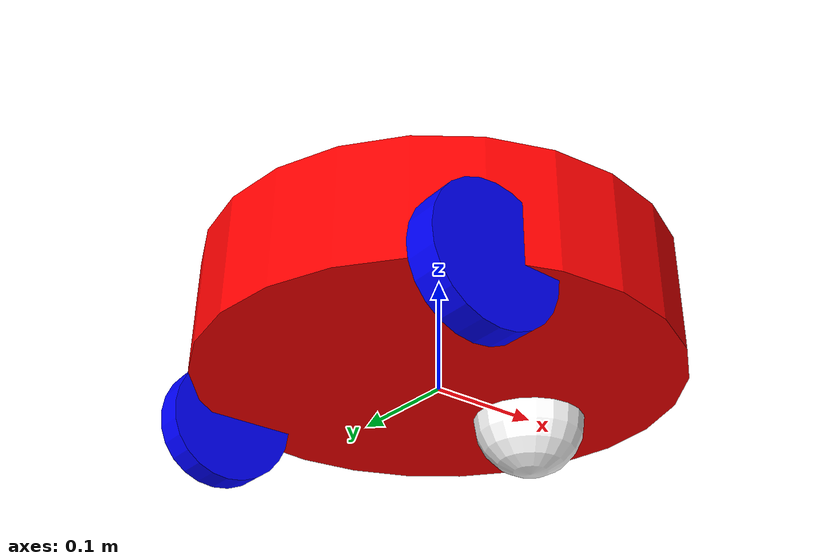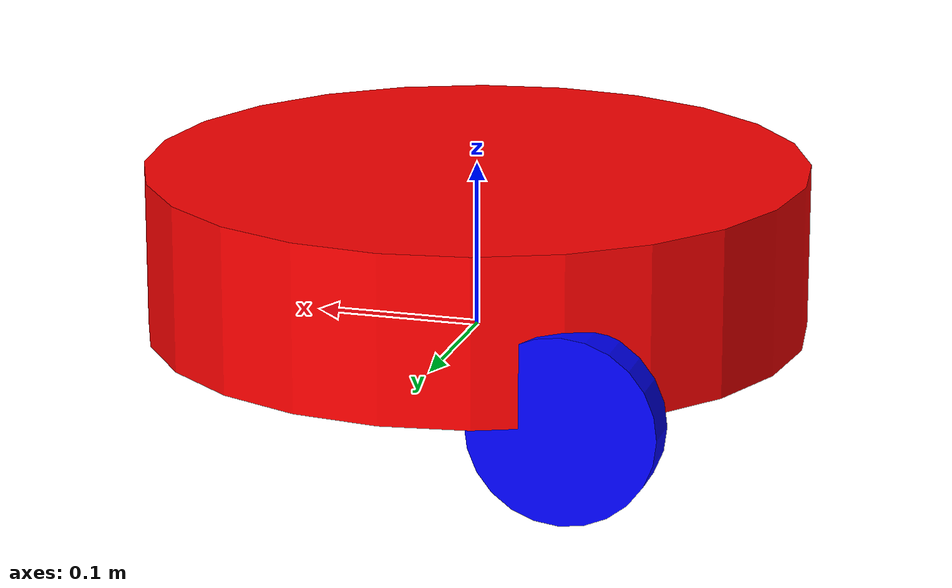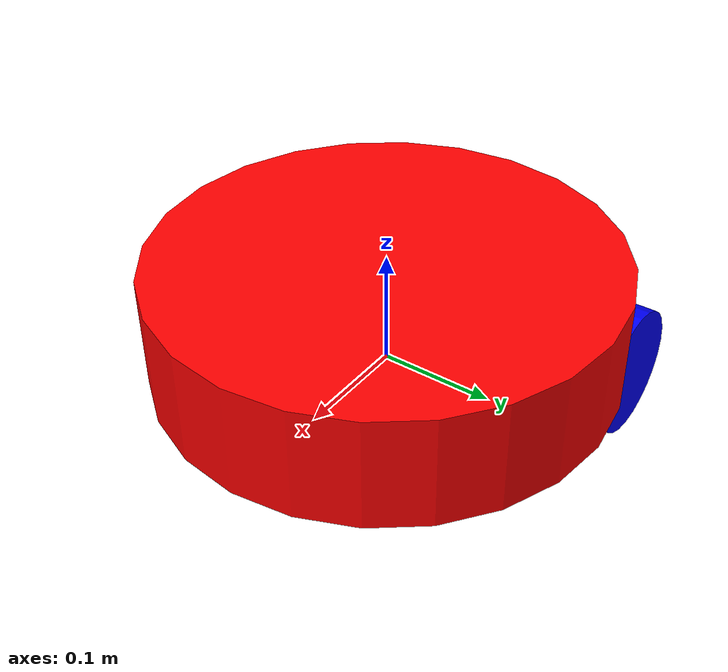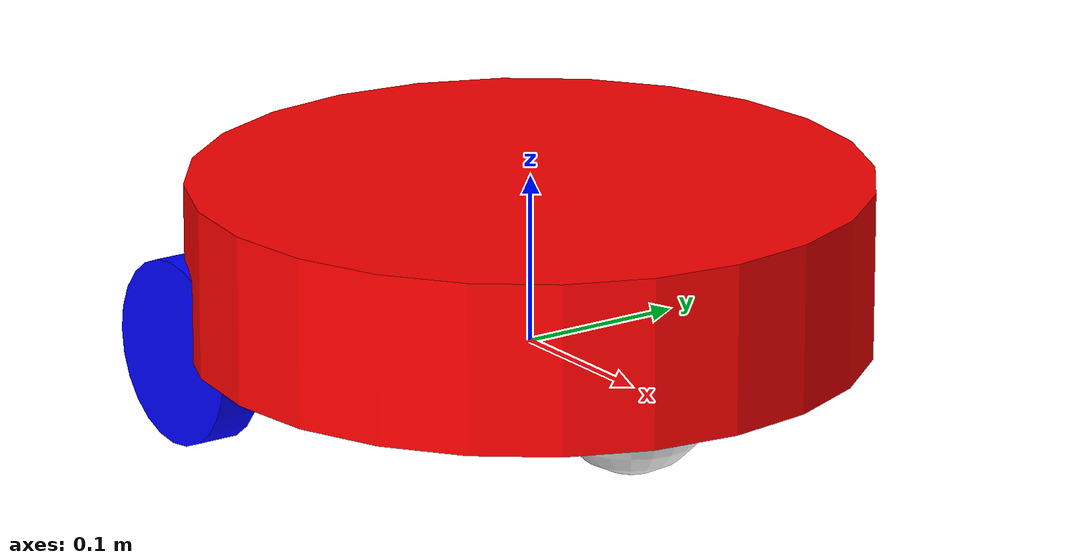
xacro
<?xml version="1.0"?>
<robot xmlns:xacro="http://www.ros.org/wiki/xacro" >
    <xacro:include filename="inertial_macros.xacro"/>
    <xacro:property name="chassis_length" value="0.1"/>
    <xacro:property name="chassis_width" value="0.1"/>
    <xacro:property name="chassis_height" value="0.25"/>
    <xacro:property name="chassis_mass" value="1.0"/>
    <xacro:property name="wheel_radius" value="0.055"/>
    <xacro:property name="wheel_thickness" value="0.026"/>
    <xacro:property name="wheel_mass" value="0.05"/>
    <xacro:property name="wheel_offset_x" value="-0.1"/>
    <xacro:property name="wheel_offset_y" value="0.17"/>
    <xacro:property name="wheel_offset_z" value="0.005"/>
    <xacro:property name="caster_wheel_radius" value="0.048"/>
    <xacro:property name="caster_wheel_mass" value="0.01"/>
    <xacro:property name="caster_wheel_offset_x" value="0.1"/>
    <xacro:property name="caster_wheel_offset_z" value="${wheel_offset_z - wheel_radius + caster_wheel_radius}"/>

    <!-- Define Roomba-style robot properties. Example below shows the structure used to define xacro properties -->
    <xacro:property name="chassis_radius" value="0.127"/> <!-- Define all other required parameters in the same format -->

	<!-- Define material colours. An example for white is shown below -->
    <material name="white">
        <color rgba="1 1 1 1" />
    </material>
    <material name="blue">
        <color rgba="0 0 1 1" />
    </material>
    <material name="red">
        <color rgba="1 0 0 1" />
    </material>

	<!-- Define all of the robot links (base_link, chassis_link, wheels) -->

    <!-- BASE LINK -->
    <link name="base_link">
    </link>
    <!-- BASE_FOOTPRINT LINK -->
        <joint name="base_footprint_joint" type="fixed">
        <parent link="base_link"/>
        <child link="base_footprint"/>
        <origin xyz="0 0 0" rpy="0 0 0"/>
    </joint>
    <link name="base_footprint">
    </link>

    <!-- CHASSIS LINK -->
    <joint name="chassis_joint" type="fixed">
        <parent link="base_link"/>
        <child link="chassis"/>
        <origin xyz="0 0 0"/>
    </joint>
    <link name="chassis">
        <visual>
            <origin xyz="0 0 0.05"/>
            <geometry>
                <cylinder radius="0.2" length="0.1"/>
            </geometry>
            <material name="red"/>
        </visual>
        <collision>
            <origin xyz="0 0 0.05"/>
            <geometry>
                <cylinder radius="0.2" length="0.1"/>
            </geometry>
        </collision>
        <xacro:inertial_cylinder mass="1.0" length="0.1" radius="0.5">
            <origin xyz="0 0 0.1" rpy="0 0 0"/>
        </xacro:inertial_cylinder>
    </link>
    <gazebo reference="chassis">
        <material>Gazebo/Red</material>
    </gazebo>

    <!-- LEFT WHEEL LINK -->
      <joint name="left_wheel_joint" type="continuous">
        <parent link="base_link"/>
        <child link="left_wheel"/>
        <origin xyz="${wheel_offset_x} ${wheel_offset_y} 0" rpy="-${pi/2} 0 0" />
        <axis xyz="0 0 1"/>
    </joint>

    <link name="left_wheel">
        <visual>
            <geometry>
                <cylinder radius="${wheel_radius}" length="${wheel_thickness}"/>
            </geometry>
            <material name="blue"/>
        </visual>
        <collision>
            <geometry>
                <sphere radius="${wheel_radius}"/>
            </geometry>
        </collision>
        <xacro:inertial_cylinder mass="${wheel_mass}" length="${wheel_thickness}" radius="${wheel_radius}">
            <origin xyz="0 0 0" rpy="0 0 0"/>
        </xacro:inertial_cylinder>
    </link>

    <gazebo reference="left_wheel">
        <material>Gazebo/Blue</material>
    </gazebo>

    <!-- RIGHT WHEEL LINK -->
     <joint name="right_wheel_joint" type="continuous">
        <parent link="base_link"/>
        <child link="right_wheel"/>
        <origin xyz="${wheel_offset_x} ${-wheel_offset_y} 0" rpy="${pi/2} 0 0" />
        <axis xyz="0 0 -1"/>
    </joint>

    <link name="right_wheel">
        <visual>
            <geometry>
                <cylinder radius="${wheel_radius}" length="${wheel_thickness}"/>
            </geometry>
            <material name="blue"/>
        </visual>
        <collision>
            <geometry>
                <sphere radius="${wheel_radius}"/>
            </geometry>
        </collision>
        <xacro:inertial_cylinder mass="${wheel_mass}" length="${wheel_thickness}" radius="${wheel_radius}">
            <origin xyz="0 0 0" rpy="0 0 0"/>
        </xacro:inertial_cylinder>
    </link>

    <gazebo reference="right_wheel">
        <material>Gazebo/Blue</material>
    </gazebo>

    <!-- CASTER WHEEL LINK -->
    <joint name="caster_wheel_joint" type="fixed">
        <parent link="chassis"/>
        <child link="caster_wheel"/>
        <origin xyz="${caster_wheel_offset_x} 0 ${caster_wheel_offset_z}"/>
    </joint>

    <link name="caster_wheel">
        <visual>
            <geometry>
                <sphere radius="${caster_wheel_radius}"/>
            </geometry>
            <material name="white"/>
        </visual>
        <collision>
            <geometry>
                <sphere radius="${caster_wheel_radius}"/>
            </geometry>
        </collision>
        <xacro:inertial_sphere mass="${caster_wheel_mass}" radius="${caster_wheel_radius}">
            <origin xyz="0 0 0" rpy="0 0 0"/>
        </xacro:inertial_sphere>
    </link>

    <gazebo reference="caster_wheel">
        <material>Gazebo/White</material>
        <mu1 value="0.001"/>
        <mu2 value="0.001"/>
    </gazebo>

</robot>
